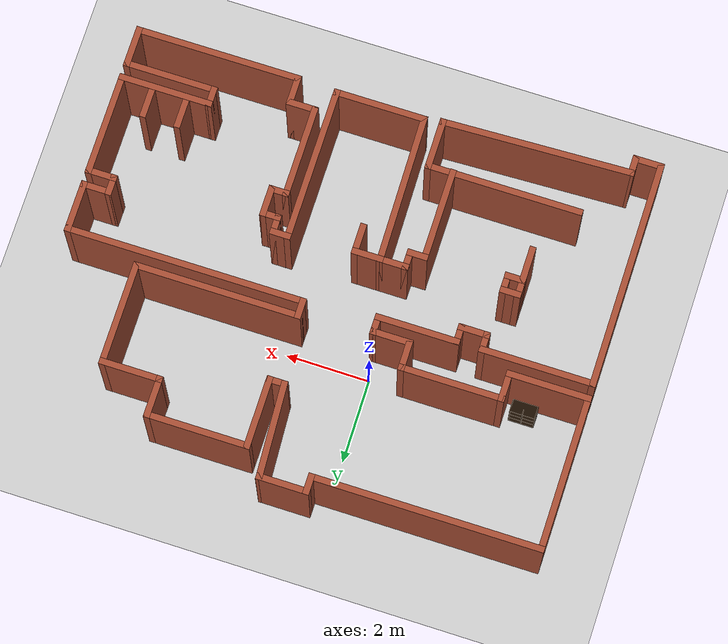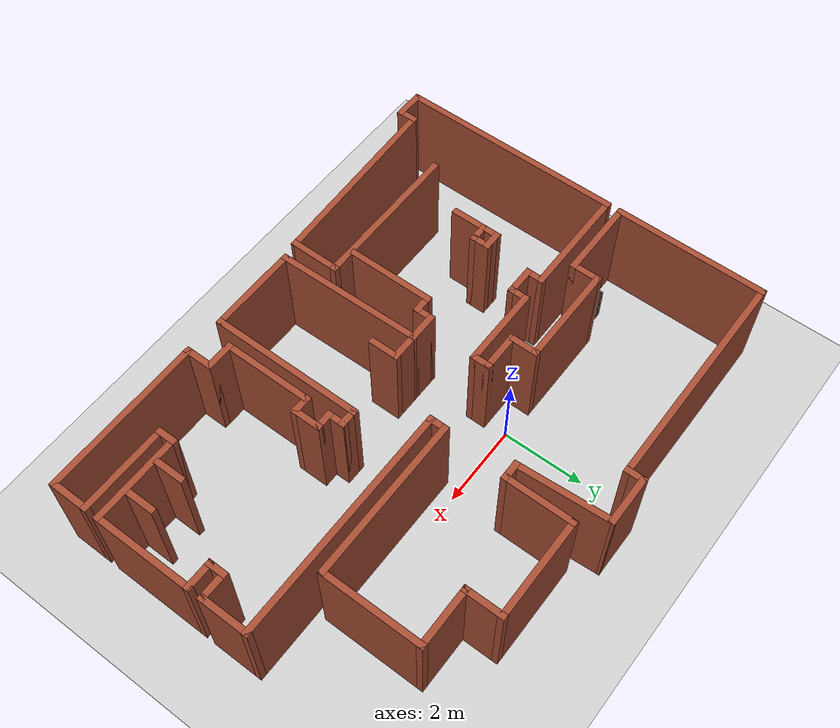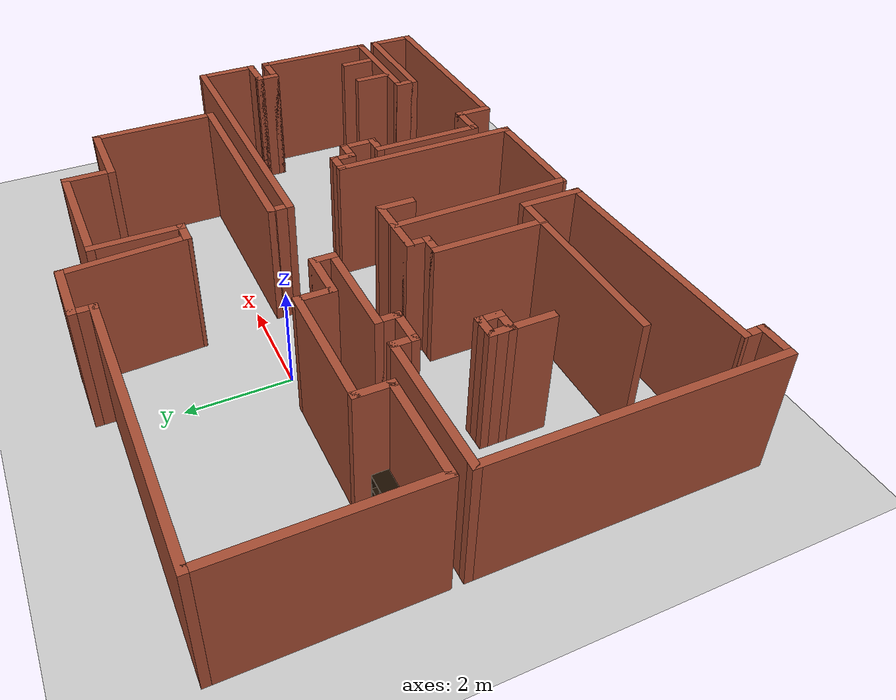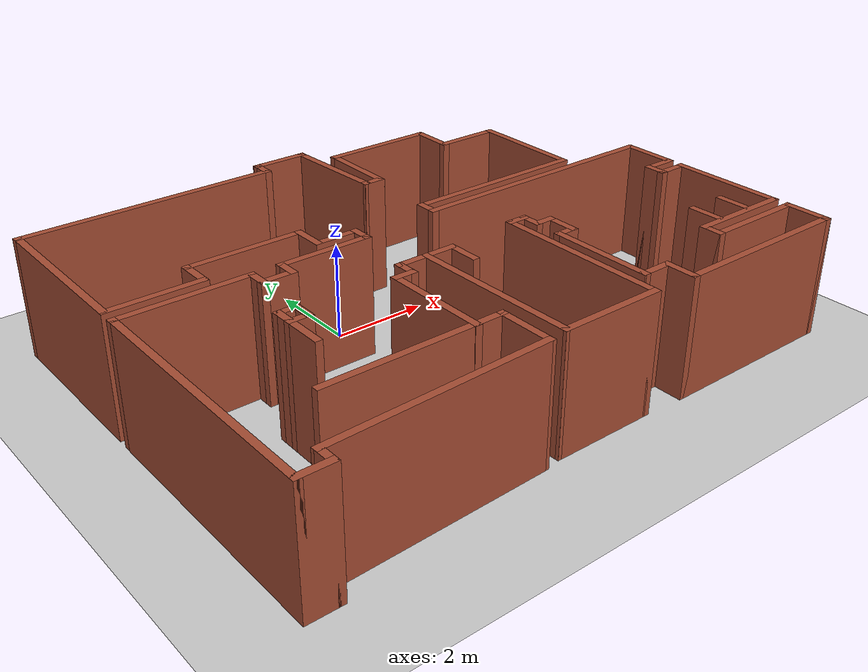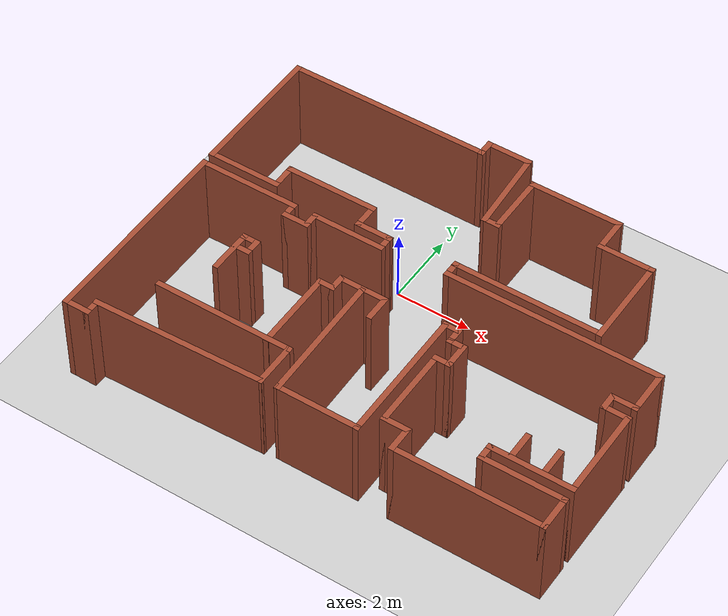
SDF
<sdf version="1.6">
 <world name="default">
  <light name="sun" type="directional">
   <pose>0 0 10 0 -0 0</pose>
   <diffuse>0.8 0.8 0.8 1</diffuse>
   <specular>0.2 0.2 0.2 1</specular>
   <attenuation>
    <range>1000</range>
    <constant>0.9</constant>
    <linear>0.01</linear>
    <quadratic>0.001</quadratic>
   </attenuation>
   <direction>-0.5 0.1 -0.9</direction>
  </light>
  <model name="ground_plane">
   <static>1</static>
   <link name="link">
    <collision name="collision">
     <geometry><plane><normal>0 0 1</normal><size>100 100</size></plane></geometry>
     <surface>
      <contact><collide_bitmask>65535</collide_bitmask></contact>
      <friction><ode><mu>100</mu><mu2>50</mu2></ode></friction>
     </surface>
    </collision>
    <visual name="visual">
     <cast_shadows>0</cast_shadows>
     <geometry><plane><normal>0 0 1</normal><size>100 100</size></plane></geometry>
     <material>
      <script><uri>file://media/materials/scripts/gazebo.material</uri><name>Gazebo/Grey</name></script>
     </material>
    </visual>
   </link>
  </model>
  <gravity>0 0 -9.8</gravity>
  <magnetic_field>6e-06 2.3e-05 -4.2e-05</magnetic_field>
  <atmosphere type="adiabatic"/>
  <physics name="default_physics" default="0" type="ode">
   <max_step_size>0.001</max_step_size>
   <real_time_factor>1</real_time_factor>
   <real_time_update_rate>1000</real_time_update_rate>
  </physics>
  <scene><ambient>0.4 0.4 0.4 1</ambient><background>0.7 0.7 0.7 1</background><shadows>1</shadows></scene>
  <audio><device>default</device></audio>
  <spherical_coordinates>
   <surface_model>EARTH_WGS84</surface_model>
   <latitude_deg>0</latitude_deg>
   <longitude_deg>0</longitude_deg>
   <elevation>0</elevation>
   <heading_deg>0</heading_deg>
  </spherical_coordinates>
  <model name="map_94">
   <pose>1.21525 -1.42684 0 0 -0 0</pose>
   <link name="Wall_0">
    <collision name="Wall_0_Collision">
     <geometry><box><size>1.25 0.15 2.5</size></box></geometry>
     <pose>0 0 1.25 0 -0 0</pose>
    </collision>
    <visual name="Wall_0_Visual">
     <pose>0 0 1.25 0 -0 0</pose>
     <geometry><box><size>1.25 0.15 2.5</size></box></geometry>
     <material>
      <script><uri>file://media/materials/scripts/gazebo.material</uri><name>Gazebo/Bricks</name></script>
      <ambient>1 1 1 1</ambient>
     </material>
     <meta><layer>0</layer></meta>
    </visual>
    <pose>-0.29008 4.82284 0 0 -0 3.14159</pose>
   </link>
   <link name="Wall_1">
    <collision name="Wall_1_Collision">
     <geometry><box><size>0.5 0.15 2.5</size></box></geometry>
     <pose>0 0 1.25 0 -0 0</pose>
    </collision>
    <visual name="Wall_1_Visual">
     <pose>0 0 1.25 0 -0 0</pose>
     <geometry><box><size>0.5 0.15 2.5</size></box></geometry>
     <material>
      <script><uri>file://media/materials/scripts/gazebo.material</uri><name>Gazebo/Bricks</name></script>
      <ambient>1 1 1 1</ambient>
     </material>
     <meta><layer>0</layer></meta>
    </visual>
    <pose>-0.84008 4.64783 0 0 -0 -1.5708</pose>
   </link>
   <link name="Wall_10">
    <collision name="Wall_10_Collision">
     <geometry><box><size>2 0.15 2.5</size></box></geometry>
     <pose>0 0 1.25 0 -0 0</pose>
    </collision>
    <visual name="Wall_10_Visual">
     <pose>0 0 1.25 0 -0 0</pose>
     <geometry><box><size>2 0.15 2.5</size></box></geometry>
     <material>
      <script><uri>file://media/materials/scripts/gazebo.material</uri><name>Gazebo/Bricks</name></script>
      <ambient>1 1 1 1</ambient>
     </material>
     <meta><layer>0</layer></meta>
    </visual>
    <pose>-2.06508 0.522835 0 0 -0 3.14159</pose>
   </link>
   <link name="Wall_13">
    <collision name="Wall_13_Collision">
     <geometry><box><size>0.5 0.15 2.5</size></box></geometry>
     <pose>0 0 1.25 0 -0 0</pose>
    </collision>
    <visual name="Wall_13_Visual">
     <pose>0 0 1.25 0 -0 0</pose>
     <geometry><box><size>0.5 0.15 2.5</size></box></geometry>
     <material>
      <script><uri>file://media/materials/scripts/gazebo.material</uri><name>Gazebo/Bricks</name></script>
      <ambient>1 1 1 1</ambient>
     </material>
     <meta><layer>0</layer></meta>
    </visual>
    <pose>-2.99008 0.347835 0 0 -0 -1.5708</pose>
   </link>
   <link name="Wall_14">
    <collision name="Wall_14_Collision">
     <geometry><box><size>0.75 0.15 2.5</size></box></geometry>
     <pose>0 0 1.25 0 -0 0</pose>
    </collision>
    <visual name="Wall_14_Visual">
     <pose>0 0 1.25 0 -0 0</pose>
     <geometry><box><size>0.75 0.15 2.5</size></box></geometry>
     <material>
      <script><uri>file://media/materials/scripts/gazebo.material</uri><name>Gazebo/Bricks</name></script>
      <ambient>1 1 1 1</ambient>
     </material>
     <meta><layer>0</layer></meta>
    </visual>
    <pose>-3.29008 0.172835 0 0 -0 3.14159</pose>
   </link>
   <link name="Wall_15">
    <collision name="Wall_15_Collision">
     <geometry><box><size>0.5 0.15 2.5</size></box></geometry>
     <pose>0 0 1.25 0 -0 0</pose>
    </collision>
    <visual name="Wall_15_Visual">
     <pose>0 0 1.25 0 -0 0</pose>
     <geometry><box><size>0.5 0.15 2.5</size></box></geometry>
     <material>
      <script><uri>file://media/materials/scripts/gazebo.material</uri><name>Gazebo/Bricks</name></script>
      <ambient>1 1 1 1</ambient>
     </material>
     <meta><layer>0</layer></meta>
    </visual>
    <pose>-3.59008 0.347835 0 0 -0 1.5708</pose>
   </link>
   <link name="Wall_16">
    <collision name="Wall_16_Collision">
     <geometry><box><size>2.75 0.15 2.5</size></box></geometry>
     <pose>0 0 1.25 0 -0 0</pose>
    </collision>
    <visual name="Wall_16_Visual">
     <pose>0 0 1.25 0 -0 0</pose>
     <geometry><box><size>2.75 0.15 2.5</size></box></geometry>
     <material>
      <script><uri>file://media/materials/scripts/gazebo.material</uri><name>Gazebo/Bricks</name></script>
      <ambient>1 1 1 1</ambient>
     </material>
     <meta><layer>0</layer></meta>
    </visual>
    <pose>-4.89008 0.522835 0 0 -0 3.14159</pose>
   </link>
   <link name="Wall_2">
    <collision name="Wall_2_Collision">
     <geometry><box><size>5.5 0.15 2.5</size></box></geometry>
     <pose>0 0 1.25 0 -0 0</pose>
    </collision>
    <visual name="Wall_2_Visual">
     <pose>0 0 1.25 0 -0 0</pose>
     <geometry><box><size>5.5 0.15 2.5</size></box></geometry>
     <material>
      <script><uri>file://media/materials/scripts/gazebo.material</uri><name>Gazebo/Bricks</name></script>
      <ambient>1 1 1 1</ambient>
     </material>
     <meta><layer>0</layer></meta>
    </visual>
    <pose>-3.51508 4.47284 0 0 -0 3.14159</pose>
   </link>
   <link name="Wall_23">
    <collision name="Wall_23_Collision">
     <geometry><box><size>1.25 0.15 2.5</size></box></geometry>
     <pose>0 0 1.25 0 -0 0</pose>
    </collision>
    <visual name="Wall_23_Visual">
     <pose>0 0 1.25 0 -0 0</pose>
     <geometry><box><size>1.25 0.15 2.5</size></box></geometry>
     <material>
      <script><uri>file://media/materials/scripts/gazebo.material</uri><name>Gazebo/Bricks</name></script>
      <ambient>1 1 1 1</ambient>
     </material>
     <meta><layer>0</layer></meta>
    </visual>
    <pose>-1.14008 -3.77716 0 0 -0 1.5708</pose>
   </link>
   <link name="Wall_24">
    <collision name="Wall_24_Collision">
     <geometry><box><size>3.75 0.15 2.5</size></box></geometry>
     <pose>0 0 1.25 0 -0 0</pose>
    </collision>
    <visual name="Wall_24_Visual">
     <pose>0 0 1.25 0 -0 0</pose>
     <geometry><box><size>3.75 0.15 2.5</size></box></geometry>
     <material>
      <script><uri>file://media/materials/scripts/gazebo.material</uri><name>Gazebo/Bricks</name></script>
      <ambient>1 1 1 1</ambient>
     </material>
     <meta><layer>0</layer></meta>
    </visual>
    <pose>-2.94008 -3.22716 0 0 -0 3.14159</pose>
   </link>
   <link name="Wall_3">
    <collision name="Wall_3_Collision">
     <geometry><box><size>3.75 0.15 2.5</size></box></geometry>
     <pose>0 0 1.25 0 -0 0</pose>
    </collision>
    <visual name="Wall_3_Visual">
     <pose>0 0 1.25 0 -0 0</pose>
     <geometry><box><size>3.75 0.15 2.5</size></box></geometry>
     <material>
      <script><uri>file://media/materials/scripts/gazebo.material</uri><name>Gazebo/Bricks</name></script>
      <ambient>1 1 1 1</ambient>
     </material>
     <meta><layer>0</layer></meta>
    </visual>
    <pose>-6.19008 2.67284 0 0 -0 -1.5708</pose>
   </link>
   <link name="Wall_31">
    <collision name="Wall_31_Collision">
     <geometry><box><size>2.25 0.15 2.5</size></box></geometry>
     <pose>0 0 1.25 0 -0 0</pose>
    </collision>
    <visual name="Wall_31_Visual">
     <pose>0 0 1.25 0 -0 0</pose>
     <geometry><box><size>2.25 0.15 2.5</size></box></geometry>
     <material>
      <script><uri>file://media/materials/scripts/gazebo.material</uri><name>Gazebo/Bricks</name></script>
      <ambient>1 1 1 1</ambient>
     </material>
     <meta><layer>0</layer></meta>
    </visual>
    <pose>0.34008 -4.26096 0 0 -0 0</pose>
   </link>
   <link name="Wall_32">
    <collision name="Wall_32_Collision">
     <geometry><box><size>3.75 0.15 2.5</size></box></geometry>
     <pose>0 0 1.25 0 -0 0</pose>
    </collision>
    <visual name="Wall_32_Visual">
     <pose>0 0 1.25 0 -0 0</pose>
     <geometry><box><size>3.75 0.15 2.5</size></box></geometry>
     <material>
      <script><uri>file://media/materials/scripts/gazebo.material</uri><name>Gazebo/Bricks</name></script>
      <ambient>1 1 1 1</ambient>
     </material>
     <meta><layer>0</layer></meta>
    </visual>
    <pose>1.39008 -2.46096 0 0 -0 1.5708</pose>
   </link>
   <link name="Wall_33">
    <collision name="Wall_33_Collision">
     <geometry><box><size>0.5 0.15 2.5</size></box></geometry>
     <pose>0 0 1.25 0 -0 0</pose>
    </collision>
    <visual name="Wall_33_Visual">
     <pose>0 0 1.25 0 -0 0</pose>
     <geometry><box><size>0.5 0.15 2.5</size></box></geometry>
     <material>
      <script><uri>file://media/materials/scripts/gazebo.material</uri><name>Gazebo/Bricks</name></script>
      <ambient>1 1 1 1</ambient>
     </material>
     <meta><layer>0</layer></meta>
    </visual>
    <pose>1.56508 -0.660963 0 0 -0 0</pose>
   </link>
   <link name="Wall_34">
    <collision name="Wall_34_Collision">
     <geometry><box><size>0.5 0.15 2.5</size></box></geometry>
     <pose>0 0 1.25 0 -0 0</pose>
    </collision>
    <visual name="Wall_34_Visual">
     <pose>0 0 1.25 0 -0 0</pose>
     <geometry><box><size>0.5 0.15 2.5</size></box></geometry>
     <material>
      <script><uri>file://media/materials/scripts/gazebo.material</uri><name>Gazebo/Bricks</name></script>
      <ambient>1 1 1 1</ambient>
     </material>
     <meta><layer>0</layer></meta>
    </visual>
    <pose>1.74008 -0.835963 0 0 -0 -1.5708</pose>
   </link>
   <link name="Wall_35">
    <collision name="Wall_35_Collision">
     <geometry><box><size>0.5 0.15 2.5</size></box></geometry>
     <pose>0 0 1.25 0 -0 0</pose>
    </collision>
    <visual name="Wall_35_Visual">
     <pose>0 0 1.25 0 -0 0</pose>
     <geometry><box><size>0.5 0.15 2.5</size></box></geometry>
     <material>
      <script><uri>file://media/materials/scripts/gazebo.material</uri><name>Gazebo/Bricks</name></script>
      <ambient>1 1 1 1</ambient>
     </material>
     <meta><layer>0</layer></meta>
    </visual>
    <pose>1.91508 -1.01096 0 0 -0 0</pose>
   </link>
   <link name="Wall_36">
    <collision name="Wall_36_Collision">
     <geometry><box><size>0.75 0.15 2.5</size></box></geometry>
     <pose>0 0 1.25 0 -0 0</pose>
    </collision>
    <visual name="Wall_36_Visual">
     <pose>0 0 1.25 0 -0 0</pose>
     <geometry><box><size>0.75 0.15 2.5</size></box></geometry>
     <material>
      <script><uri>file://media/materials/scripts/gazebo.material</uri><name>Gazebo/Bricks</name></script>
      <ambient>1 1 1 1</ambient>
     </material>
     <meta><layer>0</layer></meta>
    </visual>
    <pose>2.09008 -1.31096 0 0 -0 -1.5708</pose>
   </link>
   <link name="Wall_37">
    <collision name="Wall_37_Collision">
     <geometry><box><size>0.5 0.15 2.5</size></box></geometry>
     <pose>0 0 1.25 0 -0 0</pose>
    </collision>
    <visual name="Wall_37_Visual">
     <pose>0 0 1.25 0 -0 0</pose>
     <geometry><box><size>0.5 0.15 2.5</size></box></geometry>
     <material>
      <script><uri>file://media/materials/scripts/gazebo.material</uri><name>Gazebo/Bricks</name></script>
      <ambient>1 1 1 1</ambient>
     </material>
     <meta><layer>0</layer></meta>
    </visual>
    <pose>1.91508 -1.61096 0 0 -0 3.14159</pose>
   </link>
   <link name="Wall_38">
    <collision name="Wall_38_Collision">
     <geometry><box><size>2.25 0.15 2.5</size></box></geometry>
     <pose>0 0 1.25 0 -0 0</pose>
    </collision>
    <visual name="Wall_38_Visual">
     <pose>0 0 1.25 0 -0 0</pose>
     <geometry><box><size>2.25 0.15 2.5</size></box></geometry>
     <material>
      <script><uri>file://media/materials/scripts/gazebo.material</uri><name>Gazebo/Bricks</name></script>
      <ambient>1 1 1 1</ambient>
     </material>
     <meta><layer>0</layer></meta>
    </visual>
    <pose>1.74008 -2.66096 0 0 -0 -1.5708</pose>
   </link>
   <link name="Wall_39">
    <collision name="Wall_39_Collision">
     <geometry><box><size>0.75 0.15 2.5</size></box></geometry>
     <pose>0 0 1.25 0 -0 0</pose>
    </collision>
    <visual name="Wall_39_Visual">
     <pose>0 0 1.25 0 -0 0</pose>
     <geometry><box><size>0.75 0.15 2.5</size></box></geometry>
     <material>
      <script><uri>file://media/materials/scripts/gazebo.material</uri><name>Gazebo/Bricks</name></script>
      <ambient>1 1 1 1</ambient>
     </material>
     <meta><layer>0</layer></meta>
    </visual>
    <pose>2.04008 -3.71096 0 0 -0 0</pose>
   </link>
   <link name="Wall_4">
    <collision name="Wall_4_Collision">
     <geometry><box><size>2 0.15 2.5</size></box></geometry>
     <pose>0 0 1.25 0 -0 0</pose>
    </collision>
    <visual name="Wall_4_Visual">
     <pose>0 0 1.25 0 -0 0</pose>
     <geometry><box><size>2 0.15 2.5</size></box></geometry>
     <material>
      <script><uri>file://media/materials/scripts/gazebo.material</uri><name>Gazebo/Bricks</name></script>
      <ambient>1 1 1 1</ambient>
     </material>
     <meta><layer>0</layer></meta>
    </visual>
    <pose>-5.26508 0.872835 0 0 -0 0</pose>
   </link>
   <link name="Wall_40">
    <collision name="Wall_40_Collision">
     <geometry><box><size>0.75 0.15 2.5</size></box></geometry>
     <pose>0 0 1.25 0 -0 0</pose>
    </collision>
    <visual name="Wall_40_Visual">
     <pose>0 0 1.25 0 -0 0</pose>
     <geometry><box><size>0.75 0.15 2.5</size></box></geometry>
     <material>
      <script><uri>file://media/materials/scripts/gazebo.material</uri><name>Gazebo/Bricks</name></script>
      <ambient>1 1 1 1</ambient>
     </material>
     <meta><layer>0</layer></meta>
    </visual>
    <pose>2.34008 -4.01096 0 0 -0 -1.5708</pose>
   </link>
   <link name="Wall_41">
    <collision name="Wall_41_Collision">
     <geometry><box><size>4 0.15 2.5</size></box></geometry>
     <pose>0 0 1.25 0 -0 0</pose>
    </collision>
    <visual name="Wall_41_Visual">
     <pose>0 0 1.25 0 -0 0</pose>
     <geometry><box><size>4 0.15 2.5</size></box></geometry>
     <material>
      <script><uri>file://media/materials/scripts/gazebo.material</uri><name>Gazebo/Bricks</name></script>
      <ambient>1 1 1 1</ambient>
     </material>
     <meta><layer>0</layer></meta>
    </visual>
    <pose>4.26508 -4.31096 0 0 -0 0</pose>
   </link>
   <link name="Wall_42">
    <collision name="Wall_42_Collision">
     <geometry><box><size>1 0.15 2.5</size></box></geometry>
     <pose>0 0 1.25 0 -0 0</pose>
    </collision>
    <visual name="Wall_42_Visual">
     <pose>0 0 1.25 0 -0 0</pose>
     <geometry><box><size>1 0.15 2.5</size></box></geometry>
     <material>
      <script><uri>file://media/materials/scripts/gazebo.material</uri><name>Gazebo/Bricks</name></script>
      <ambient>1 1 1 1</ambient>
     </material>
     <meta><layer>0</layer></meta>
    </visual>
    <pose>6.19008 -3.88596 0 0 -0 1.5708</pose>
   </link>
   <link name="Wall_43">
    <collision name="Wall_43_Collision">
     <geometry><box><size>2.25 0.15 2.5</size></box></geometry>
     <pose>0 0 1.25 0 -0 0</pose>
    </collision>
    <visual name="Wall_43_Visual">
     <pose>0 0 1.25 0 -0 0</pose>
     <geometry><box><size>2.25 0.15 2.5</size></box></geometry>
     <material>
      <script><uri>file://media/materials/scripts/gazebo.material</uri><name>Gazebo/Bricks</name></script>
      <ambient>1 1 1 1</ambient>
     </material>
     <meta><layer>0</layer></meta>
    </visual>
    <pose>5.14008 -3.46096 0 0 -0 3.14159</pose>
   </link>
   <link name="Wall_44">
    <collision name="Wall_44_Collision">
     <geometry><box><size>0.5 0.15 2.5</size></box></geometry>
     <pose>0 0 1.25 0 -0 0</pose>
    </collision>
    <visual name="Wall_44_Visual">
     <pose>0 0 1.25 0 -0 0</pose>
     <geometry><box><size>0.5 0.15 2.5</size></box></geometry>
     <material>
      <script><uri>file://media/materials/scripts/gazebo.material</uri><name>Gazebo/Bricks</name></script>
      <ambient>1 1 1 1</ambient>
     </material>
     <meta><layer>0</layer></meta>
    </visual>
    <pose>4.09008 -3.28596 0 0 -0 1.5708</pose>
   </link>
   <link name="Wall_45">
    <collision name="Wall_45_Collision">
     <geometry><box><size>2.25 0.15 2.5</size></box></geometry>
     <pose>0 0 1.25 0 -0 0</pose>
    </collision>
    <visual name="Wall_45_Visual">
     <pose>0 0 1.25 0 -0 0</pose>
     <geometry><box><size>2.25 0.15 2.5</size></box></geometry>
     <material>
      <script><uri>file://media/materials/scripts/gazebo.material</uri><name>Gazebo/Bricks</name></script>
      <ambient>1 1 1 1</ambient>
     </material>
     <meta><layer>0</layer></meta>
    </visual>
    <pose>5.14008 -3.11096 0 0 -0 0</pose>
   </link>
   <link name="Wall_46">
    <collision name="Wall_46_Collision">
     <geometry><box><size>2.5 0.15 2.5</size></box></geometry>
     <pose>0 0 1.25 0 -0 0</pose>
    </collision>
    <visual name="Wall_46_Visual">
     <pose>0 0 1.25 0 -0 0</pose>
     <geometry><box><size>2.5 0.15 2.5</size></box></geometry>
     <material>
      <script><uri>file://media/materials/scripts/gazebo.material</uri><name>Gazebo/Bricks</name></script>
      <ambient>1 1 1 1</ambient>
     </material>
     <meta><layer>0</layer></meta>
    </visual>
    <pose>6.19008 -1.93596 0 0 -0 1.5708</pose>
   </link>
   <link name="Wall_47">
    <collision name="Wall_47_Collision">
     <geometry><box><size>0.75 0.15 2.5</size></box></geometry>
     <pose>0 0 1.25 0 -0 0</pose>
    </collision>
    <visual name="Wall_47_Visual">
     <pose>0 0 1.25 0 -0 0</pose>
     <geometry><box><size>0.75 0.15 2.5</size></box></geometry>
     <material>
      <script><uri>file://media/materials/scripts/gazebo.material</uri><name>Gazebo/Bricks</name></script>
      <ambient>1 1 1 1</ambient>
     </material>
     <meta><layer>0</layer></meta>
    </visual>
    <pose>5.89008 -0.760963 0 0 -0 3.14159</pose>
   </link>
   <link name="Wall_48">
    <collision name="Wall_48_Collision">
     <geometry><box><size>0.5 0.15 2.5</size></box></geometry>
     <pose>0 0 1.25 0 -0 0</pose>
    </collision>
    <visual name="Wall_48_Visual">
     <pose>0 0 1.25 0 -0 0</pose>
     <geometry><box><size>0.5 0.15 2.5</size></box></geometry>
     <material>
      <script><uri>file://media/materials/scripts/gazebo.material</uri><name>Gazebo/Bricks</name></script>
      <ambient>1 1 1 1</ambient>
     </material>
     <meta><layer>0</layer></meta>
    </visual>
    <pose>5.59008 -0.585963 0 0 -0 1.5708</pose>
   </link>
   <link name="Wall_49">
    <collision name="Wall_49_Collision">
     <geometry><box><size>0.75 0.15 2.5</size></box></geometry>
     <pose>0 0 1.25 0 -0 0</pose>
    </collision>
    <visual name="Wall_49_Visual">
     <pose>0 0 1.25 0 -0 0</pose>
     <geometry><box><size>0.75 0.15 2.5</size></box></geometry>
     <material>
      <script><uri>file://media/materials/scripts/gazebo.material</uri><name>Gazebo/Bricks</name></script>
      <ambient>1 1 1 1</ambient>
     </material>
     <meta><layer>0</layer></meta>
    </visual>
    <pose>5.89008 -0.410963 0 0 -0 0</pose>
   </link>
   <link name="Wall_5">
    <collision name="Wall_5_Collision">
     <geometry><box><size>0.75 0.15 2.5</size></box></geometry>
     <pose>0 0 1.25 0 -0 0</pose>
    </collision>
    <visual name="Wall_5_Visual">
     <pose>0 0 1.25 0 -0 0</pose>
     <geometry><box><size>0.75 0.15 2.5</size></box></geometry>
     <material>
      <script><uri>file://media/materials/scripts/gazebo.material</uri><name>Gazebo/Bricks</name></script>
      <ambient>1 1 1 1</ambient>
     </material>
     <meta><layer>0</layer></meta>
    </visual>
    <pose>-4.34008 1.17284 0 0 -0 1.5708</pose>
   </link>
   <link name="Wall_50">
    <collision name="Wall_50_Collision">
     <geometry><box><size>1.25 0.15 2.5</size></box></geometry>
     <pose>0 0 1.25 0 -0 0</pose>
    </collision>
    <visual name="Wall_50_Visual">
     <pose>0 0 1.25 0 -0 0</pose>
     <geometry><box><size>1.25 0.15 2.5</size></box></geometry>
     <material>
      <script><uri>file://media/materials/scripts/gazebo.material</uri><name>Gazebo/Bricks</name></script>
      <ambient>1 1 1 1</ambient>
     </material>
     <meta><layer>0</layer></meta>
    </visual>
    <pose>6.19008 0.139037 0 0 -0 1.5708</pose>
   </link>
   <link name="Wall_51">
    <collision name="Wall_51_Collision">
     <geometry><box><size>5.75 0.15 2.5</size></box></geometry>
     <pose>0 0 1.25 0 -0 0</pose>
    </collision>
    <visual name="Wall_51_Visual">
     <pose>0 0 1.25 0 -0 0</pose>
     <geometry><box><size>5.75 0.15 2.5</size></box></geometry>
     <material>
      <script><uri>file://media/materials/scripts/gazebo.material</uri><name>Gazebo/Bricks</name></script>
      <ambient>1 1 1 1</ambient>
     </material>
     <meta><layer>0</layer></meta>
    </visual>
    <pose>3.39008 0.689037 0 0 -0 3.14159</pose>
   </link>
   <link name="Wall_52">
    <collision name="Wall_52_Collision">
     <geometry><box><size>0.5 0.15 2.5</size></box></geometry>
     <pose>0 0 1.25 0 -0 0</pose>
    </collision>
    <visual name="Wall_52_Visual">
     <pose>0 0 1.25 0 -0 0</pose>
     <geometry><box><size>0.5 0.15 2.5</size></box></geometry>
     <material>
      <script><uri>file://media/materials/scripts/gazebo.material</uri><name>Gazebo/Bricks</name></script>
      <ambient>1 1 1 1</ambient>
     </material>
     <meta><layer>0</layer></meta>
    </visual>
    <pose>0.59008 0.864037 0 0 -0 1.5708</pose>
   </link>
   <link name="Wall_53">
    <collision name="Wall_53_Collision">
     <geometry><box><size>4 0.15 2.5</size></box></geometry>
     <pose>0 0 1.25 0 -0 0</pose>
    </collision>
    <visual name="Wall_53_Visual">
     <pose>0 0 1.25 0 -0 0</pose>
     <geometry><box><size>4 0.15 2.5</size></box></geometry>
     <material>
      <script><uri>file://media/materials/scripts/gazebo.material</uri><name>Gazebo/Bricks</name></script>
      <ambient>1 1 1 1</ambient>
     </material>
     <meta><layer>0</layer></meta>
    </visual>
    <pose>2.51508 1.03904 0 0 -0 0</pose>
   </link>
   <link name="Wall_54">
    <collision name="Wall_54_Collision">
     <geometry><box><size>2.5 0.15 2.5</size></box></geometry>
     <pose>0 0 1.25 0 -0 0</pose>
    </collision>
    <visual name="Wall_54_Visual">
     <pose>0 0 1.25 0 -0 0</pose>
     <geometry><box><size>2.5 0.15 2.5</size></box></geometry>
     <material>
      <script><uri>file://media/materials/scripts/gazebo.material</uri><name>Gazebo/Bricks</name></script>
      <ambient>1 1 1 1</ambient>
     </material>
     <meta><layer>0</layer></meta>
    </visual>
    <pose>4.44008 2.21404 0 0 -0 1.5708</pose>
   </link>
   <link name="Wall_55">
    <collision name="Wall_55_Collision">
     <geometry><box><size>1.5 0.15 2.5</size></box></geometry>
     <pose>0 0 1.25 0 -0 0</pose>
    </collision>
    <visual name="Wall_55_Visual">
     <pose>0 0 1.25 0 -0 0</pose>
     <geometry><box><size>1.5 0.15 2.5</size></box></geometry>
     <material>
      <script><uri>file://media/materials/scripts/gazebo.material</uri><name>Gazebo/Bricks</name></script>
      <ambient>1 1 1 1</ambient>
     </material>
     <meta><layer>0</layer></meta>
    </visual>
    <pose>3.76508 3.38904 0 0 -0 3.14159</pose>
   </link>
   <link name="Wall_56">
    <collision name="Wall_56_Collision">
     <geometry><box><size>1 0.15 2.5</size></box></geometry>
     <pose>0 0 1.25 0 -0 0</pose>
    </collision>
    <visual name="Wall_56_Visual">
     <pose>0 0 1.25 0 -0 0</pose>
     <geometry><box><size>1 0.15 2.5</size></box></geometry>
     <material>
      <script><uri>file://media/materials/scripts/gazebo.material</uri><name>Gazebo/Bricks</name></script>
      <ambient>1 1 1 1</ambient>
     </material>
     <meta><layer>0</layer></meta>
    </visual>
    <pose>3.09008 3.81404 0 0 -0 1.5708</pose>
   </link>
   <link name="Wall_57">
    <collision name="Wall_57_Collision">
     <geometry><box><size>2.5 0.15 2.5</size></box></geometry>
     <pose>0 0 1.25 0 -0 0</pose>
    </collision>
    <visual name="Wall_57_Visual">
     <pose>0 0 1.25 0 -0 0</pose>
     <geometry><box><size>2.5 0.15 2.5</size></box></geometry>
     <material>
      <script><uri>file://media/materials/scripts/gazebo.material</uri><name>Gazebo/Bricks</name></script>
      <ambient>1 1 1 1</ambient>
     </material>
     <meta><layer>0</layer></meta>
    </visual>
    <pose>1.91508 4.23904 0 0 -0 3.14159</pose>
   </link>
   <link name="Wall_6">
    <collision name="Wall_6_Collision">
     <geometry><box><size>2.5 0.15 2.5</size></box></geometry>
     <pose>0 0 1.25 0 -0 0</pose>
    </collision>
    <visual name="Wall_6_Visual">
     <pose>0 0 1.25 0 -0 0</pose>
     <geometry><box><size>2.5 0.15 2.5</size></box></geometry>
     <material>
      <script><uri>file://media/materials/scripts/gazebo.material</uri><name>Gazebo/Bricks</name></script>
      <ambient>1 1 1 1</ambient>
     </material>
     <meta><layer>0</layer></meta>
    </visual>
    <pose>-3.16508 1.47283 0 0 -0 0</pose>
   </link>
   <link name="Wall_68">
    <collision name="Wall_68_Collision">
     <geometry><box><size>2.25 0.15 2.5</size></box></geometry>
     <pose>0 0 1.25 0 -0 0</pose>
    </collision>
    <visual name="Wall_68_Visual">
     <pose>0 0 1.25 0 -0 0</pose>
     <geometry><box><size>2.25 0.15 2.5</size></box></geometry>
     <material>
      <script><uri>file://media/materials/scripts/gazebo.material</uri><name>Gazebo/Bricks</name></script>
      <ambient>1 1 1 1</ambient>
     </material>
     <meta><layer>0</layer></meta>
    </visual>
    <pose>-1.71697 -2.1885 0 0 -0 1.5708</pose>
   </link>
   <link name="Wall_69">
    <collision name="Wall_69_Collision">
     <geometry><box><size>0.5 0.15 2.5</size></box></geometry>
     <pose>0 0 1.25 0 -0 0</pose>
    </collision>
    <visual name="Wall_69_Visual">
     <pose>0 0 1.25 0 -0 0</pose>
     <geometry><box><size>0.5 0.15 2.5</size></box></geometry>
     <material>
      <script><uri>file://media/materials/scripts/gazebo.material</uri><name>Gazebo/Bricks</name></script>
      <ambient>1 1 1 1</ambient>
     </material>
     <meta><layer>0</layer></meta>
    </visual>
    <pose>-1.54197 -1.1385 0 0 -0 0</pose>
   </link>
   <link name="Wall_7">
    <collision name="Wall_7_Collision">
     <geometry><box><size>0.75 0.15 2.5</size></box></geometry>
     <pose>0 0 1.25 0 -0 0</pose>
    </collision>
    <visual name="Wall_7_Visual">
     <pose>0 0 1.25 0 -0 0</pose>
     <geometry><box><size>0.75 0.15 2.5</size></box></geometry>
     <material>
      <script><uri>file://media/materials/scripts/gazebo.material</uri><name>Gazebo/Bricks</name></script>
      <ambient>1 1 1 1</ambient>
     </material>
     <meta><layer>0</layer></meta>
    </visual>
    <pose>-1.99008 1.17284 0 0 -0 -1.5708</pose>
   </link>
   <link name="Wall_72">
    <collision name="Wall_72_Collision">
     <geometry><box><size>0.5 0.15 2.5</size></box></geometry>
     <pose>0 0 1.25 0 -0 0</pose>
    </collision>
    <visual name="Wall_72_Visual">
     <pose>0 0 1.25 0 -0 0</pose>
     <geometry><box><size>0.5 0.15 2.5</size></box></geometry>
     <material>
      <script><uri>file://media/materials/scripts/gazebo.material</uri><name>Gazebo/Bricks</name></script>
      <ambient>1 1 1 1</ambient>
     </material>
     <meta><layer>0</layer></meta>
    </visual>
    <pose>-1.36697 -0.963502 0 0 -0 1.5708</pose>
   </link>
   <link name="Wall_73">
    <collision name="Wall_73_Collision">
     <geometry><box><size>0.75 0.15 2.5</size></box></geometry>
     <pose>0 0 1.25 0 -0 0</pose>
    </collision>
    <visual name="Wall_73_Visual">
     <pose>0 0 1.25 0 -0 0</pose>
     <geometry><box><size>0.75 0.15 2.5</size></box></geometry>
     <material>
      <script><uri>file://media/materials/scripts/gazebo.material</uri><name>Gazebo/Bricks</name></script>
      <ambient>1 1 1 1</ambient>
     </material>
     <meta><layer>0</layer></meta>
    </visual>
    <pose>-1.06697 -0.788502 0 0 -0 0</pose>
   </link>
   <link name="Wall_74">
    <collision name="Wall_74_Collision">
     <geometry><box><size>3.62293 0.15 2.5</size></box></geometry>
     <pose>0 0 1.25 0 -0 0</pose>
    </collision>
    <visual name="Wall_74_Visual">
     <pose>0 0 1.25 0 -0 0</pose>
     <geometry><box><size>3.62293 0.15 2.5</size></box></geometry>
     <material>
      <script><uri>file://media/materials/scripts/gazebo.material</uri><name>Gazebo/Bricks</name></script>
      <ambient>1 1 1 1</ambient>
     </material>
     <meta><layer>0</layer></meta>
    </visual>
    <pose>-0.738446 -2.52473 0 0 -0 -1.55437</pose>
   </link>
   <link name="Wall_76">
    <collision name="Wall_76_Collision">
     <geometry><box><size>1.75 0.15 2.5</size></box></geometry>
     <pose>0 0 1.25 0 -0 0</pose>
    </collision>
    <visual name="Wall_76_Visual">
     <pose>0 0 1.25 0 -0 0</pose>
     <geometry><box><size>1.75 0.15 2.5</size></box></geometry>
     <material>
      <script><uri>file://media/materials/scripts/gazebo.material</uri><name>Gazebo/Bricks</name></script>
      <ambient>1 1 1 1</ambient>
     </material>
     <meta><layer>0</layer></meta>
    </visual>
    <pose>0.74008 3.43904 0 0 -0 -1.5708</pose>
   </link>
   <link name="Wall_77">
    <collision name="Wall_77_Collision">
     <geometry><box><size>0.5 0.15 2.5</size></box></geometry>
     <pose>0 0 1.25 0 -0 0</pose>
    </collision>
    <visual name="Wall_77_Visual">
     <pose>0 0 1.25 0 -0 0</pose>
     <geometry><box><size>0.5 0.15 2.5</size></box></geometry>
     <material>
      <script><uri>file://media/materials/scripts/gazebo.material</uri><name>Gazebo/Bricks</name></script>
      <ambient>1 1 1 1</ambient>
     </material>
     <meta><layer>0</layer></meta>
    </visual>
    <pose>0.56508 2.63904 0 0 -0 3.14159</pose>
   </link>
   <link name="Wall_78">
    <collision name="Wall_78_Collision">
     <geometry><box><size>2.33767 0.15 2.5</size></box></geometry>
     <pose>0 0 1.25 0 -0 0</pose>
    </collision>
    <visual name="Wall_78_Visual">
     <pose>0 0 1.25 0 -0 0</pose>
     <geometry><box><size>2.33767 0.15 2.5</size></box></geometry>
     <material>
      <script><uri>file://media/materials/scripts/gazebo.material</uri><name>Gazebo/Bricks</name></script>
      <ambient>1 1 1 1</ambient>
     </material>
     <meta><layer>0</layer></meta>
    </visual>
    <pose>0.325 3.73094 0 0 -0 1.63033</pose>
   </link>
   <link name="Wall_8">
    <collision name="Wall_8_Collision">
     <geometry><box><size>1 0.15 2.5</size></box></geometry>
     <pose>0 0 1.25 0 -0 0</pose>
    </collision>
    <visual name="Wall_8_Visual">
     <pose>0 0 1.25 0 -0 0</pose>
     <geometry><box><size>1 0.15 2.5</size></box></geometry>
     <material>
      <script><uri>file://media/materials/scripts/gazebo.material</uri><name>Gazebo/Bricks</name></script>
      <ambient>1 1 1 1</ambient>
     </material>
     <meta><layer>0</layer></meta>
    </visual>
    <pose>-1.56508 0.872835 0 0 -0 0</pose>
   </link>
   <link name="Wall_80">
    <collision name="Wall_80_Collision">
     <geometry><box><size>5.5 0.15 2.5</size></box></geometry>
     <pose>0 0 1.25 0 -0 0</pose>
    </collision>
    <visual name="Wall_80_Visual">
     <pose>0 0 1.25 0 -0 0</pose>
     <geometry><box><size>5.5 0.15 2.5</size></box></geometry>
     <material>
      <script><uri>file://media/materials/scripts/gazebo.material</uri><name>Gazebo/Bricks</name></script>
      <ambient>1 1 1 1</ambient>
     </material>
     <meta><layer>0</layer></meta>
    </visual>
    <pose>-6.19008 -2.15216 0 0 -0 -1.5708</pose>
   </link>
   <link name="Wall_81">
    <collision name="Wall_81_Collision">
     <geometry><box><size>0.75 0.15 2.5</size></box></geometry>
     <pose>0 0 1.25 0 -0 0</pose>
    </collision>
    <visual name="Wall_81_Visual">
     <pose>0 0 1.25 0 -0 0</pose>
     <geometry><box><size>0.75 0.15 2.5</size></box></geometry>
     <material>
      <script><uri>file://media/materials/scripts/gazebo.material</uri><name>Gazebo/Bricks</name></script>
      <ambient>1 1 1 1</ambient>
     </material>
     <meta><layer>0</layer></meta>
    </visual>
    <pose>-5.89008 -4.82716 0 0 -0 0</pose>
   </link>
   <link name="Wall_82">
    <collision name="Wall_82_Collision">
     <geometry><box><size>0.5 0.15 2.5</size></box></geometry>
     <pose>0 0 1.25 0 -0 0</pose>
    </collision>
    <visual name="Wall_82_Visual">
     <pose>0 0 1.25 0 -0 0</pose>
     <geometry><box><size>0.5 0.15 2.5</size></box></geometry>
     <material>
      <script><uri>file://media/materials/scripts/gazebo.material</uri><name>Gazebo/Bricks</name></script>
      <ambient>1 1 1 1</ambient>
     </material>
     <meta><layer>0</layer></meta>
    </visual>
    <pose>-5.59008 -4.65216 0 0 -0 1.5708</pose>
   </link>
   <link name="Wall_83">
    <collision name="Wall_83_Collision">
     <geometry><box><size>4.60253 0.15 2.5</size></box></geometry>
     <pose>0 0 1.25 0 -0 0</pose>
    </collision>
    <visual name="Wall_83_Visual">
     <pose>0 0 1.25 0 -0 0</pose>
     <geometry><box><size>4.60253 0.15 2.5</size></box></geometry>
     <material>
      <script><uri>file://media/materials/scripts/gazebo.material</uri><name>Gazebo/Bricks</name></script>
      <ambient>1 1 1 1</ambient>
     </material>
     <meta><layer>0</layer></meta>
    </visual>
    <pose>-3.36508 -4.40216 0 0 -0 0.033695</pose>
   </link>
   <link name="Wall_85">
    <collision name="Wall_85_Collision">
     <geometry><box><size>0.75 0.15 2.5</size></box></geometry>
     <pose>0 0 1.25 0 -0 0</pose>
    </collision>
    <visual name="Wall_85_Visual">
     <pose>0 0 1.25 0 -0 0</pose>
     <geometry><box><size>0.75 0.15 2.5</size></box></geometry>
     <material>
      <script><uri>file://media/materials/scripts/gazebo.material</uri><name>Gazebo/Bricks</name></script>
      <ambient>1 1 1 1</ambient>
     </material>
     <meta><layer>0</layer></meta>
    </visual>
    <pose>4.6152 -2.71257 0 0 -0 -1.5708</pose>
   </link>
   <link name="Wall_87">
    <collision name="Wall_87_Collision">
     <geometry><box><size>0.75 0.15 2.5</size></box></geometry>
     <pose>0 0 1.25 0 -0 0</pose>
    </collision>
    <visual name="Wall_87_Visual">
     <pose>0 0 1.25 0 -0 0</pose>
     <geometry><box><size>0.75 0.15 2.5</size></box></geometry>
     <material>
      <script><uri>file://media/materials/scripts/gazebo.material</uri><name>Gazebo/Bricks</name></script>
      <ambient>1 1 1 1</ambient>
     </material>
     <meta><layer>0</layer></meta>
    </visual>
    <pose>5.44114 -2.71257 0 0 -0 -1.5708</pose>
   </link>
   <link name="Wall_89">
    <collision name="Wall_89_Collision">
     <geometry><box><size>1.25 0.15 2.5</size></box></geometry>
     <pose>0 0 1.25 0 -0 0</pose>
    </collision>
    <visual name="Wall_89_Visual">
     <pose>0 0 1.25 0 -0 0</pose>
     <geometry><box><size>1.25 0.15 2.5</size></box></geometry>
     <material>
      <script><uri>file://media/materials/scripts/gazebo.material</uri><name>Gazebo/Bricks</name></script>
      <ambient>1 1 1 1</ambient>
     </material>
     <meta><layer>0</layer></meta>
    </visual>
    <pose>-3.98065 -1.49423 0 0 -0 -1.5708</pose>
   </link>
   <link name="Wall_9">
    <collision name="Wall_9_Collision">
     <geometry><box><size>0.5 0.15 2.5</size></box></geometry>
     <pose>0 0 1.25 0 -0 0</pose>
    </collision>
    <visual name="Wall_9_Visual">
     <pose>0 0 1.25 0 -0 0</pose>
     <geometry><box><size>0.5 0.15 2.5</size></box></geometry>
     <material>
      <script><uri>file://media/materials/scripts/gazebo.material</uri><name>Gazebo/Bricks</name></script>
      <ambient>1 1 1 1</ambient>
     </material>
     <meta><layer>0</layer></meta>
    </visual>
    <pose>-1.14008 0.697835 0 0 -0 -1.5708</pose>
   </link>
   <link name="Wall_91">
    <collision name="Wall_91_Collision">
     <geometry><box><size>0.5 0.15 2.5</size></box></geometry>
     <pose>0 0 1.25 0 -0 0</pose>
    </collision>
    <visual name="Wall_91_Visual">
     <pose>0 0 1.25 0 -0 0</pose>
     <geometry><box><size>0.5 0.15 2.5</size></box></geometry>
     <material>
      <script><uri>file://media/materials/scripts/gazebo.material</uri><name>Gazebo/Bricks</name></script>
      <ambient>1 1 1 1</ambient>
     </material>
     <meta><layer>0</layer></meta>
    </visual>
    <pose>-3.80565 -0.944235 0 0 -0 0</pose>
   </link>
   <link name="Wall_92">
    <collision name="Wall_92_Collision">
     <geometry><box><size>0.5 0.15 2.5</size></box></geometry>
     <pose>0 0 1.25 0 -0 0</pose>
    </collision>
    <visual name="Wall_92_Visual">
     <pose>0 0 1.25 0 -0 0</pose>
     <geometry><box><size>0.5 0.15 2.5</size></box></geometry>
     <material>
      <script><uri>file://media/materials/scripts/gazebo.material</uri><name>Gazebo/Bricks</name></script>
      <ambient>1 1 1 1</ambient>
     </material>
     <meta><layer>0</layer></meta>
    </visual>
    <pose>-3.63065 -1.11923 0 0 -0 -1.5708</pose>
   </link>
   <link name="Wall_93">
    <collision name="Wall_93_Collision">
     <geometry><box><size>0.5 0.15 2.5</size></box></geometry>
     <pose>0 0 1.25 0 -0 0</pose>
    </collision>
    <visual name="Wall_93_Visual">
     <pose>0 0 1.25 0 -0 0</pose>
     <geometry><box><size>0.5 0.15 2.5</size></box></geometry>
     <material>
      <script><uri>file://media/materials/scripts/gazebo.material</uri><name>Gazebo/Bricks</name></script>
      <ambient>1 1 1 1</ambient>
     </material>
     <meta><layer>0</layer></meta>
    </visual>
    <pose>-3.80565 -1.29424 0 0 -0 3.14159</pose>
   </link>
   <link name="Wall_95">
    <collision name="Wall_95_Collision">
     <geometry><box><size>0.75 0.15 2.5</size></box></geometry>
     <pose>0 0 1.25 0 -0 0</pose>
    </collision>
    <visual name="Wall_95_Visual">
     <pose>0 0 1.25 0 -0 0</pose>
     <geometry><box><size>0.75 0.15 2.5</size></box></geometry>
     <material>
      <script><uri>file://media/materials/scripts/gazebo.material</uri><name>Gazebo/Bricks</name></script>
      <ambient>1 1 1 1</ambient>
     </material>
     <meta><layer>0</layer></meta>
    </visual>
    <pose>-0.466972 -0.788502 0 0 -0 0</pose>
   </link>
   <link name="Wall_96">
    <collision name="Wall_96_Collision">
     <geometry><box><size>0.75 0.15 2.5</size></box></geometry>
     <pose>0 0 1.25 0 -0 0</pose>
    </collision>
    <visual name="Wall_96_Visual">
     <pose>0 0 1.25 0 -0 0</pose>
     <geometry><box><size>0.75 0.15 2.5</size></box></geometry>
     <material>
      <script><uri>file://media/materials/scripts/gazebo.material</uri><name>Gazebo/Bricks</name></script>
      <ambient>1 1 1 1</ambient>
     </material>
     <meta><layer>0</layer></meta>
    </visual>
    <pose>-0.166972 -1.0885 0 0 -0 -1.5708</pose>
   </link>
   <static>1</static>
  </model>
  <model name="6_Cube_StorageE">
   <link name="Wall_0">
    <pose>0 0 0.01 0 -0 0</pose>
    <inertial>
     <mass>1.6201</mass>
     <inertia><ixx>0.0119</ixx><iyy>0.0631</iyy><izz>0.0513</izz><ixy>0</ixy><ixz>0</ixz><iyz>0</iyz></inertia>
    </inertial>
    <collision name="Wall_0_Collision"><geometry><box><size>0.616 0.296 0.02</size></box></geometry></collision>
    <visual name="Wall_0_Visual">
     <geometry><box><size>0.616 0.296 0.02</size></box></geometry>
     <material>
      <script><uri>file://media/materials/scripts/gazebo.material</uri><name>Gazebo/Grey</name></script>
      <ambient>0.105882 0.0509804 0 1</ambient>
     </material>
    </visual>
   </link>
   <joint name="0_2" type="fixed">
    <pose>-0.308 0 0 0 -0 0</pose>
    <parent>Wall_2</parent>
    <child>Wall_0</child>
    <axis>
     <xyz>1 0 0</xyz>
     <use_parent_model_frame>0</use_parent_model_frame>
     <limit><lower>-1e+16</lower><upper>1e+16</upper></limit>
    </axis>
   </joint>
   <joint name="0_12" type="fixed">
    <parent>Wall_12</parent>
    <child>Wall_0</child>
    <axis>
     <xyz>0 0 1</xyz>
     <use_parent_model_frame>0</use_parent_model_frame>
     <limit><lower>-1e+16</lower><upper>1e+16</upper></limit>
    </axis>
   </joint>
   <joint name="0_4" type="fixed">
    <pose>0.308 0 0 0 -0 0</pose>
    <parent>Wall_4</parent>
    <child>Wall_0</child>
    <axis>
     <xyz>1 0 0</xyz>
     <use_parent_model_frame>0</use_parent_model_frame>
     <limit><lower>-1e+16</lower><upper>1e+16</upper></limit>
    </axis>
   </joint>
   <link name="Wall_10">
    <pose>0 0 0.61 0 -0 0</pose>
    <inertial>
     <mass>1.6201</mass>
     <inertia><ixx>0.0119</ixx><iyy>0.0631</iyy><izz>0.0513</izz><ixy>0</ixy><ixz>0</ixz><iyz>0</iyz></inertia>
    </inertial>
    <collision name="Wall_10_Collision"><geometry><box><size>0.616 0.296 0.02</size></box></geometry></collision>
    <visual name="Wall_10_Visual">
     <geometry><box><size>0.616 0.296 0.02</size></box></geometry>
     <material>
      <script><uri>file://media/materials/scripts/gazebo.material</uri><name>Gazebo/Grey</name></script>
      <ambient>0.105882 0.0509804 0 1</ambient>
     </material>
    </visual>
   </link>
   <joint name="10_2" type="fixed">
    <pose>-0.308 0 0 0 -0 0</pose>
    <parent>Wall_2</parent>
    <child>Wall_10</child>
    <axis>
     <xyz>1 0 0</xyz>
     <use_parent_model_frame>0</use_parent_model_frame>
     <limit><lower>-1e+16</lower><upper>1e+16</upper></limit>
    </axis>
   </joint>
   <joint name="10_12" type="fixed">
    <parent>Wall_12</parent>
    <child>Wall_10</child>
    <axis>
     <xyz>0 0 1</xyz>
     <use_parent_model_frame>0</use_parent_model_frame>
     <limit><lower>-1e+16</lower><upper>1e+16</upper></limit>
    </axis>
   </joint>
   <joint name="10_4" type="fixed">
    <pose>0.308 0 0 0 -0 0</pose>
    <parent>Wall_4</parent>
    <child>Wall_10</child>
    <axis>
     <xyz>1 0 0</xyz>
     <use_parent_model_frame>0</use_parent_model_frame>
     <limit><lower>-1e+16</lower><upper>1e+16</upper></limit>
    </axis>
   </joint>
   <link name="Wall_12">
    <pose>0 0 0.4575 0 -0 0</pose>
    <inertial>
     <mass>2.4065</mass>
     <inertia><ixx>0.0177</ixx><iyy>0.1855</iyy><izz>0.168</izz><ixy>0</ixy><ixz>0</ixz><iyz>0</iyz></inertia>
    </inertial>
    <collision name="Wall_12_Collision"><geometry><box><size>0.02 0.296 0.915</size></box></geometry></collision>
    <visual name="Wall_12_Visual">
     <geometry><box><size>0.02 0.296 0.915</size></box></geometry>
     <material>
      <script><uri>file://media/materials/scripts/gazebo.material</uri><name>Gazebo/Grey</name></script>
      <ambient>0.105882 0.0509804 0 1</ambient>
     </material>
    </visual>
   </link>
   <link name="Wall_2">
    <pose>-0.298 0 0.4575 0 -0 0</pose>
    <inertial>
     <mass>2.4065</mass>
     <inertia><ixx>0.0177</ixx><iyy>0.1855</iyy><izz>0.168</izz><ixy>0</ixy><ixz>0</ixz><iyz>0</iyz></inertia>
    </inertial>
    <collision name="Wall_2_Collision"><geometry><box><size>0.02 0.296 0.915</size></box></geometry></collision>
    <visual name="Wall_2_Visual">
     <geometry><box><size>0.02 0.296 0.915</size></box></geometry>
     <material>
      <script><uri>file://media/materials/scripts/gazebo.material</uri><name>Gazebo/Grey</name></script>
      <ambient>0.105882 0.0509804 0 1</ambient>
     </material>
    </visual>
   </link>
   <link name="Wall_4">
    <pose>0.298 0 0.4575 0 -0 0</pose>
    <inertial>
     <mass>2.4065</mass>
     <inertia><ixx>0.0177</ixx><iyy>0.1855</iyy><izz>0.168</izz><ixy>0</ixy><ixz>0</ixz><iyz>0</iyz></inertia>
    </inertial>
    <collision name="Wall_4_Collision"><geometry><box><size>0.02 0.296 0.915</size></box></geometry></collision>
    <visual name="Wall_4_Visual">
     <geometry><box><size>0.02 0.296 0.915</size></box></geometry>
     <material>
      <script><uri>file://media/materials/scripts/gazebo.material</uri><name>Gazebo/Grey</name></script>
      <ambient>0.105882 0.0509804 0 1</ambient>
     </material>
    </visual>
   </link>
   <link name="Wall_6">
    <pose>0 0 0.905 0 -0 0</pose>
    <inertial>
     <mass>1.6201</mass>
     <inertia><ixx>0.0119</ixx><iyy>0.0631</iyy><izz>0.0513</izz><ixy>0</ixy><ixz>0</ixz><iyz>0</iyz></inertia>
    </inertial>
    <collision name="Wall_6_Collision"><geometry><box><size>0.616 0.296 0.02</size></box></geometry></collision>
    <visual name="Wall_6_Visual">
     <geometry><box><size>0.616 0.296 0.02</size></box></geometry>
     <material>
      <script><uri>file://media/materials/scripts/gazebo.material</uri><name>Gazebo/Grey</name></script>
      <ambient>0.105882 0.0509804 0 1</ambient>
     </material>
    </visual>
   </link>
   <joint name="6_2" type="fixed">
    <pose>-0.308 0 0 0 -0 0</pose>
    <parent>Wall_2</parent>
    <child>Wall_6</child>
    <axis>
     <xyz>2 0 0</xyz>
     <use_parent_model_frame>0</use_parent_model_frame>
     <limit><lower>-1e+16</lower><upper>1e+16</upper></limit>
    </axis>
   </joint>
   <joint name="6_12" type="fixed">
    <parent>Wall_12</parent>
    <child>Wall_6</child>
    <axis>
     <xyz>0 0 1</xyz>
     <use_parent_model_frame>0</use_parent_model_frame>
     <limit><lower>-1e+16</lower><upper>1e+16</upper></limit>
    </axis>
   </joint>
   <joint name="6_4" type="fixed">
    <pose>0.308 0 0 0 -0 0</pose>
    <parent>Wall_4</parent>
    <child>Wall_6</child>
    <axis>
     <xyz>1 0 0</xyz>
     <use_parent_model_frame>0</use_parent_model_frame>
     <limit><lower>-1e+16</lower><upper>1e+16</upper></limit>
    </axis>
   </joint>
   <link name="Wall_8">
    <pose>0 0 0.305 0 -0 0</pose>
    <inertial>
     <mass>1.6201</mass>
     <inertia><ixx>0.0119</ixx><iyy>0.0631</iyy><izz>0.0513</izz><ixy>0</ixy><ixz>0</ixz><iyz>0</iyz></inertia>
    </inertial>
    <collision name="Wall_8_Collision"><geometry><box><size>0.616 0.296 0.02</size></box></geometry></collision>
    <visual name="Wall_8_Visual">
     <geometry><box><size>0.616 0.296 0.02</size></box></geometry>
     <material>
      <script><uri>file://media/materials/scripts/gazebo.material</uri><name>Gazebo/Grey</name></script>
      <ambient>0.105882 0.0509804 0 1</ambient>
     </material>
    </visual>
   </link>
   <joint name="8_2" type="fixed">
    <pose>-0.308 0 0 0 -0 0</pose>
    <parent>Wall_2</parent>
    <child>Wall_8</child>
    <axis>
     <xyz>1 0 0</xyz>
     <use_parent_model_frame>0</use_parent_model_frame>
     <limit><lower>-1e+16</lower><upper>1e+16</upper></limit>
    </axis>
   </joint>
   <joint name="8_12" type="fixed">
    <parent>Wall_12</parent>
    <child>Wall_8</child>
    <axis>
     <xyz>0 0 1</xyz>
     <use_parent_model_frame>0</use_parent_model_frame>
     <limit><lower>-1e+16</lower><upper>1e+16</upper></limit>
    </axis>
   </joint>
   <joint name="8_4" type="fixed">
    <pose>0.308 0 0 0 -0 0</pose>
    <parent>Wall_4</parent>
    <child>Wall_8</child>
    <axis>
     <xyz>1 0 0</xyz>
     <use_parent_model_frame>0</use_parent_model_frame>
     <limit><lower>-1e+16</lower><upper>1e+16</upper></limit>
    </axis>
   </joint>
   <static>1</static>
   <pose>-3.63252 -0.256775 0 0 -0 0</pose>
  </model>
 </world>
</sdf>
